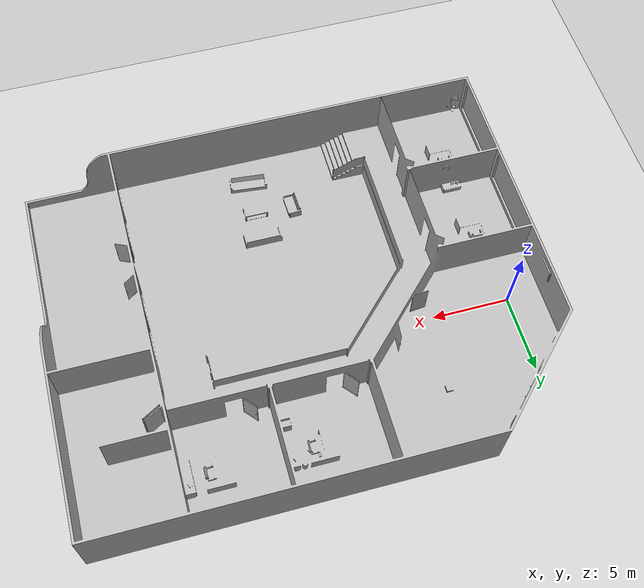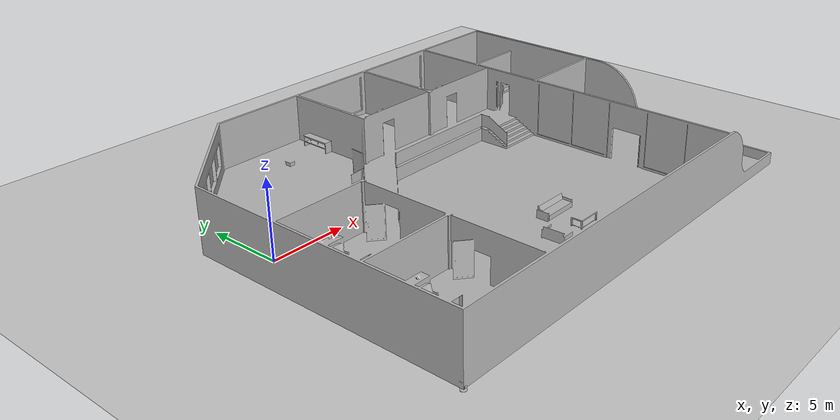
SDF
<?xml version="1.0" ?>
<sdf version="1.4">
  <world name="world">
    <model name="office">
      <static>true</static>
      <link name="body">
        <visual name="visual">
          <pose>-2.0 -15 0.01 0 0 0</pose>
          <geometry>
            <mesh><uri>model://office/office.stl</uri></mesh>
          </geometry>
        </visual>
        <collision name="collision">
          <pose>-2.0 -15 -0.01 0 0 0</pose>
          <geometry>
            <mesh><uri>model://office/office.stl</uri></mesh>
          </geometry>
        </collision>
      </link>
    </model>
    <gui fullscreen='0'>
      <camera name='user_camera'>
        <pose>5.0 5.0 50.0 0.0 1.57 1.57</pose>
        <view_controller>orbit</view_controller>
      </camera>
    </gui>
    <include>
      <uri>model://ground_plane</uri>
    </include>
 </world>

</sdf>
